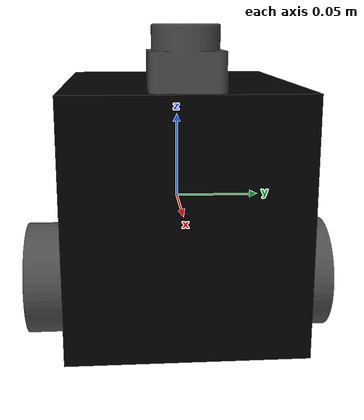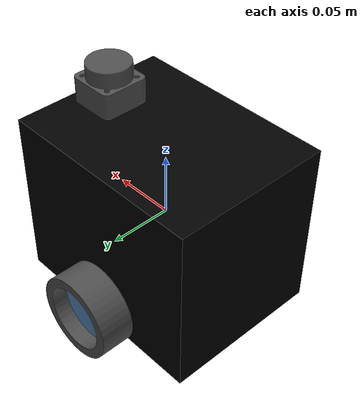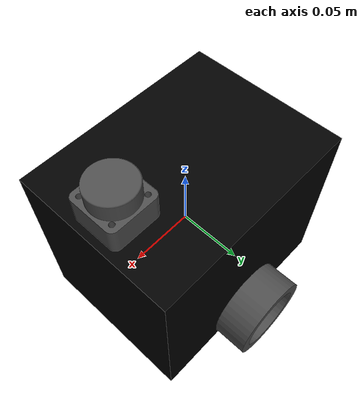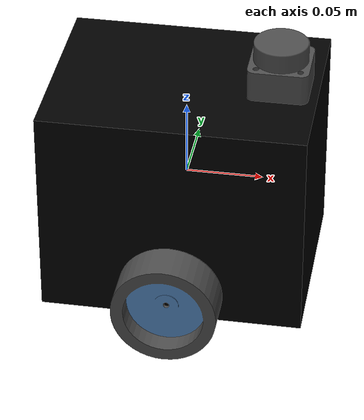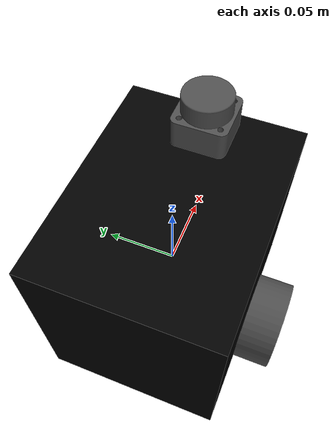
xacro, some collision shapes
<robot name="bentobot" xmlns:xacro="http://www.ros.org/wiki/xacro">

    <!-- gazebo integration -->

    <xacro:include filename="$(find bentobot_description)/urdf/bentobot.gazebo"/>

    <!-- xacro macros -->

    <xacro:macro name="caster_part" params="name origin_xyz">
        <collision name='${name}_collision'>
            <origin xyz="${origin_xyz}" rpy="0 0 0"/>
            <geometry>
                <sphere radius="0.01"/>
            </geometry>
        </collision>
    </xacro:macro>

    <xacro:macro name="wheel" params="name origin_xyz mesh_xyz">
        <link name="${name}">
            <pose>0 0 0 0 0 0</pose>
            <inertial>
                <mass value="1"/>
                <origin xyz="${origin_xyz}" rpy="0 0 0"/>
                <inertia
                    ixx="0.0003" ixy="0" ixz="0"
                    iyy="0.0003" iyz="0"
                    izz="0.0006"
                />
            </inertial>
            <visual name="visual">
                <origin xyz="${mesh_xyz}" rpy="0 1.5707 1.5707"/>
                <geometry>
                    <mesh filename="package://bentobot_description/urdf/meshes/bentobot-wheel.dae"/>
                </geometry>
            </visual>
            <collision name="${name}_collision">
                <origin xyz="${origin_xyz}" rpy="0 1.5707 1.5707"/>
                <geometry>
                    <cylinder radius="0.034" length="0.027"/>
                </geometry>
            </collision>
        </link>
    </xacro:macro>

    <!-- root footprint link and joint -->

    <link name="robot_footprint"></link>

    <joint name="robot_footprint_joint" type="fixed">
        <origin xyz="0 0 0" rpy="0 0 0" />
        <parent link="robot_footprint"/>
        <child link="chassis" />m
    </joint>

    <!-- chassis link -->

    <link name="chassis">
        <pose>0 0 0 0 0 0</pose>

        <inertial>
            <mass value="5"/>
            <origin xyz="0 0 0" rpy="0 0 0"/>
            <inertia
                ixx="0.016" ixy="0" ixz="0"
                iyy="0.021" iyz="0"
                izz="0.019"
            />
        </inertial>

        <visual>
            <origin xyz="0 0 -0.065" rpy="0 0 -1.5707"/>
            <material name="blue">
                <color rgba="0.0 0.0 0.0 1.0"/>
            </material>
            <geometry>
                <mesh filename="package://bentobot_description/urdf/meshes/robot-chassis.stl"/>
            </geometry>
        </visual>

        <collision name="chassis_collision">
            <origin xyz="0 0 0" rpy="0 0 0"/>
            <geometry>
                <box size="0.17 0.13 0.14"/>
            </geometry>
        </collision>

        <xacro:caster_part name="front_left_caster" origin_xyz="0.0575 0.0425 -0.075"/>
        <xacro:caster_part name="front_right_caster" origin_xyz="0.0575 -0.0425 -0.075"/>
        <xacro:caster_part name="back_left_caster" origin_xyz="-0.0575 0.0425 -0.075"/>
        <xacro:caster_part name="back_right_caster" origin_xyz="-0.0575 -0.0425 -0.075"/>
    </link>

    <!-- wheel links and joints -->

    <xacro:wheel name="left_wheel" origin_xyz="0 -0.0135 0" mesh_xyz="0 -0.027 0"/>
    <xacro:wheel name="right_wheel" origin_xyz="0 0.0135 0" mesh_xyz="0 0 0"/>

    <joint type="continuous" name="left_wheel_hinge">
    <origin xyz="0 0.092 -0.0513" rpy="0 0 0"/>
        <child link="left_wheel"/>
        <parent link="chassis"/>
        <axis xyz="0 1 0" rpy="0 0 0"/>
        <limit effort="10000" velocity="10000"/>
        <dynamics damping="1.0" friction="1.0"/>
    </joint>

    <joint type="continuous" name="right_wheel_hinge">
        <origin xyz="0 -0.092 -0.0513" rpy="0 0 0"/>
        <child link="right_wheel"/>
        <parent link="chassis"/>
        <axis xyz="0 1 0" rpy="0 0 0"/>
        <limit effort="10000" velocity="10000"/>
        <dynamics damping="1.0" friction="1.0"/>
    </joint>

    <!-- lidar link and joint -->

    <link name="lidar">
        <pose>0 0 0 0 0 0</pose>

        <inertial>
            <mass value="1e-5"/>
            <origin xyz="0 0 0" rpy="0 0 0"/>
            <inertia
                ixx="1e-6" ixy="0" ixz="0"
                iyy="1e-6" iyz="0"
                izz="1e-6"
            />
        </inertial>

        <visual>
            <origin xyz="0 0 -0.0165" rpy="0 0 0"/>
            <geometry>
                <mesh filename="package://bentobot_description/urdf/meshes/lidar.stl"/>
            </geometry>
        </visual>

        <collision name="lidar_collision">
            <geometry>
                <box size="0.039 0.039 0.033"/>
            </geometry>
        </collision>
    </link>

    <joint type="fixed" name="lidar_joint">
        <origin xyz="0.06 0 0.0865" rpy="0 0 0"/>
        <child link="lidar"/>
        <parent link="chassis"/>
        <axis xyz="0 1 0" rpy="0 0 0"/>
    </joint>

     <!-- Set link colors -->

    <gazebo reference="chassis">
        <material>Gazebo/DarkGrey</material>
    </gazebo>

    <gazebo reference="lidar">
        <material>Gazebo/DarkGrey</material>
    </gazebo>
</robot>
